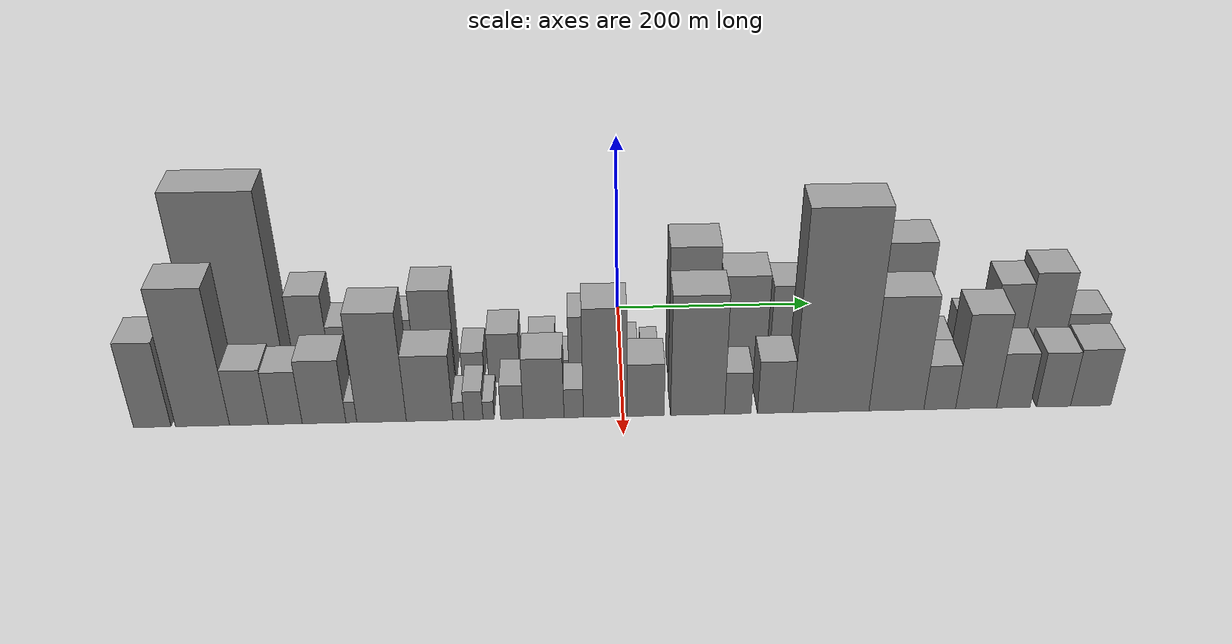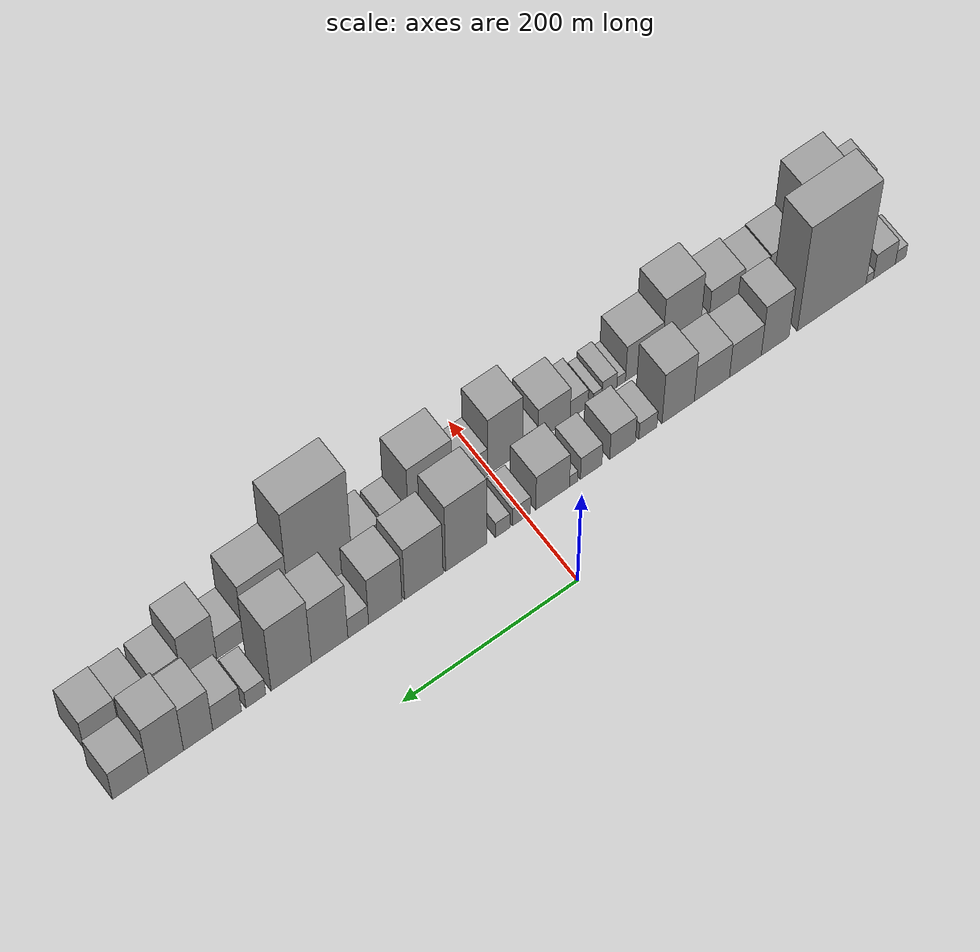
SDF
<sdf version="1.6">
 <world name="default">
  <scene>
   <sky><clouds><speed>12</speed></clouds></sky>
   <ambient>0.4 0.4 0.4 1</ambient>
   <background>0.7 0.7 0.7 1</background>
   <shadows>1</shadows>
  </scene>
  <gravity>0 0 -9.8066</gravity>
  <magnetic_field>6e-06 2.3e-05 -4.2e-05</magnetic_field>
  <physics default="0" name="default_physics" type="ode">
   <ode>
    <solver>
     <type>quick</type>
     <iters>10</iters>
     <sor>1.0</sor>
     <use_dynamic_moi_rescaling>0</use_dynamic_moi_rescaling>
    </solver>
    <constraints>
     <cfm>0</cfm>
     <erp>0.2</erp>
     <contact_max_correcting_vel>100</contact_max_correcting_vel>
     <contact_surface_layer>0.001</contact_surface_layer>
    </constraints>
   </ode>
   <max_step_size>0.004</max_step_size>
   <real_time_factor>1</real_time_factor>
   <real_time_update_rate>250</real_time_update_rate>
  </physics>
  <light name="sun" type="directional">
   <pose>0 0 10 0 0 0</pose>
   <diffuse>0.8 0.8 0.8 1</diffuse>
   <specular>0.2 0.2 0.2 1</specular>
   <attenuation>
    <range>1000</range>
    <constant>0.9</constant>
    <linear>0.01</linear>
    <quadratic>0.001</quadratic>
   </attenuation>
   <direction>-0.5 0.1 -0.9</direction>
  </light>
  <model name="building_1">
   <static>1</static>
   <pose>100.0000 -443.6787 0 0.000000 0.000000 0.000000</pose>
   <link name="link">
    <pose>0 0 13.50 0 0 0</pose>
    <collision name="collision"><geometry><box><size>40.0000 12.6426 27.0000</size></box></geometry></collision>
    <visual name="visual">
     <cast_shadows>0</cast_shadows>
     <geometry><box><size>40.0000 12.6426 27.0000</size></box></geometry>
     <material>
      <script>
       <uri>model://grey_wall/materials/scripts</uri>
       <uri>model://grey_wall/materials/textures</uri>
       <name>vrc/grey_wall</name>
      </script>
     </material>
    </visual>
   </link>
  </model>
  <model name="building_2">
   <static>1</static>
   <pose>100.0000 -424.0104 0 0.000000 0.000000 0.000000</pose>
   <link name="link">
    <pose>0 0 25.50 0 0 0</pose>
    <collision name="collision"><geometry><box><size>40.0000 26.6941 51.0000</size></box></geometry></collision>
    <visual name="visual">
     <cast_shadows>0</cast_shadows>
     <geometry><box><size>40.0000 26.6941 51.0000</size></box></geometry>
     <material>
      <script>
       <uri>model://grey_wall/materials/scripts</uri>
       <uri>model://grey_wall/materials/textures</uri>
       <name>vrc/grey_wall</name>
      </script>
     </material>
    </visual>
   </link>
  </model>
  <model name="building_3">
   <static>1</static>
   <pose>100.0000 -406.2277 0 0.000000 0.000000 0.000000</pose>
   <link name="link">
    <pose>0 0 9.00 0 0 0</pose>
    <collision name="collision"><geometry><box><size>40.0000 8.8712 18.0000</size></box></geometry></collision>
    <visual name="visual">
     <cast_shadows>0</cast_shadows>
     <geometry><box><size>40.0000 8.8712 18.0000</size></box></geometry>
     <material>
      <script>
       <uri>model://grey_wall/materials/scripts</uri>
       <uri>model://grey_wall/materials/textures</uri>
       <name>vrc/grey_wall</name>
      </script>
     </material>
    </visual>
   </link>
  </model>
  <model name="building_4">
   <static>1</static>
   <pose>100.0000 -360.5033 0 0.000000 0.000000 0.000000</pose>
   <link name="link">
    <pose>0 0 108.00 0 0 0</pose>
    <collision name="collision"><geometry><box><size>40.0000 82.5776 216.0000</size></box></geometry></collision>
    <visual name="visual">
     <cast_shadows>0</cast_shadows>
     <geometry><box><size>40.0000 82.5776 216.0000</size></box></geometry>
     <material>
      <script>
       <uri>model://grey_wall/materials/scripts</uri>
       <uri>model://grey_wall/materials/textures</uri>
       <name>vrc/grey_wall</name>
      </script>
     </material>
    </visual>
   </link>
  </model>
  <model name="building_5">
   <static>1</static>
   <pose>100.0000 -292.5312 0 0.000000 0.000000 0.000000</pose>
   <link name="link">
    <pose>0 0 52.50 0 0 0</pose>
    <collision name="collision"><geometry><box><size>40.0000 33.3666 105.0000</size></box></geometry></collision>
    <visual name="visual">
     <cast_shadows>0</cast_shadows>
     <geometry><box><size>40.0000 33.3666 105.0000</size></box></geometry>
     <material>
      <script>
       <uri>model://grey_wall/materials/scripts</uri>
       <uri>model://grey_wall/materials/textures</uri>
       <name>vrc/grey_wall</name>
      </script>
     </material>
    </visual>
   </link>
  </model>
  <model name="building_6">
   <static>1</static>
   <pose>100.0000 -256.9862 0 0.000000 0.000000 0.000000</pose>
   <link name="link">
    <pose>0 0 34.50 0 0 0</pose>
    <collision name="collision"><geometry><box><size>40.0000 37.7236 69.0000</size></box></geometry></collision>
    <visual name="visual">
     <cast_shadows>0</cast_shadows>
     <geometry><box><size>40.0000 37.7236 69.0000</size></box></geometry>
     <material>
      <script>
       <uri>model://grey_wall/materials/scripts</uri>
       <uri>model://grey_wall/materials/textures</uri>
       <name>vrc/grey_wall</name>
      </script>
     </material>
    </visual>
   </link>
  </model>
  <model name="building_7">
   <static>1</static>
   <pose>100.0000 -217.2485 0 0.000000 0.000000 0.000000</pose>
   <link name="link">
    <pose>0 0 37.50 0 0 0</pose>
    <collision name="collision"><geometry><box><size>40.0000 41.7519 75.0000</size></box></geometry></collision>
    <visual name="visual">
     <cast_shadows>0</cast_shadows>
     <geometry><box><size>40.0000 41.7519 75.0000</size></box></geometry>
     <material>
      <script>
       <uri>model://grey_wall/materials/scripts</uri>
       <uri>model://grey_wall/materials/textures</uri>
       <name>vrc/grey_wall</name>
      </script>
     </material>
    </visual>
   </link>
  </model>
  <model name="building_8">
   <static>1</static>
   <pose>100.0000 -177.3488 0 0.000000 0.000000 0.000000</pose>
   <link name="link">
    <pose>0 0 54.00 0 0 0</pose>
    <collision name="collision"><geometry><box><size>40.0000 38.0475 108.0000</size></box></geometry></collision>
    <visual name="visual">
     <cast_shadows>0</cast_shadows>
     <geometry><box><size>40.0000 38.0475 108.0000</size></box></geometry>
     <material>
      <script>
       <uri>model://grey_wall/materials/scripts</uri>
       <uri>model://grey_wall/materials/textures</uri>
       <name>vrc/grey_wall</name>
      </script>
     </material>
    </visual>
   </link>
  </model>
  <model name="building_9">
   <static>1</static>
   <pose>100.0000 -141.7301 0 0.000000 0.000000 0.000000</pose>
   <link name="link">
    <pose>0 0 18.00 0 0 0</pose>
    <collision name="collision"><geometry><box><size>40.0000 21.1898 36.0000</size></box></geometry></collision>
    <visual name="visual">
     <cast_shadows>0</cast_shadows>
     <geometry><box><size>40.0000 21.1898 36.0000</size></box></geometry>
     <material>
      <script>
       <uri>model://grey_wall/materials/scripts</uri>
       <uri>model://grey_wall/materials/textures</uri>
       <name>vrc/grey_wall</name>
      </script>
     </material>
    </visual>
   </link>
  </model>
  <model name="building_10">
   <static>1</static>
   <pose>100.0000 -112.0870 0 0.000000 0.000000 0.000000</pose>
   <link name="link">
    <pose>0 0 28.50 0 0 0</pose>
    <collision name="collision"><geometry><box><size>40.0000 30.0966 57.0000</size></box></geometry></collision>
    <visual name="visual">
     <cast_shadows>0</cast_shadows>
     <geometry><box><size>40.0000 30.0966 57.0000</size></box></geometry>
     <material>
      <script>
       <uri>model://grey_wall/materials/scripts</uri>
       <uri>model://grey_wall/materials/textures</uri>
       <name>vrc/grey_wall</name>
      </script>
     </material>
    </visual>
   </link>
  </model>
  <model name="building_11">
   <static>1</static>
   <pose>100.0000 -75.4032 0 0.000000 0.000000 0.000000</pose>
   <link name="link">
    <pose>0 0 24.00 0 0 0</pose>
    <collision name="collision"><geometry><box><size>40.0000 25.2710 48.0000</size></box></geometry></collision>
    <visual name="visual">
     <cast_shadows>0</cast_shadows>
     <geometry><box><size>40.0000 25.2710 48.0000</size></box></geometry>
     <material>
      <script>
       <uri>model://grey_wall/materials/scripts</uri>
       <uri>model://grey_wall/materials/textures</uri>
       <name>vrc/grey_wall</name>
      </script>
     </material>
    </visual>
   </link>
  </model>
  <model name="building_12">
   <static>1</static>
   <pose>100.0000 -54.9610 0 0.000000 0.000000 0.000000</pose>
   <link name="link">
    <pose>0 0 12.00 0 0 0</pose>
    <collision name="collision"><geometry><box><size>40.0000 9.6134 24.0000</size></box></geometry></collision>
    <visual name="visual">
     <cast_shadows>0</cast_shadows>
     <geometry><box><size>40.0000 9.6134 24.0000</size></box></geometry>
     <material>
      <script>
       <uri>model://grey_wall/materials/scripts</uri>
       <uri>model://grey_wall/materials/textures</uri>
       <name>vrc/grey_wall</name>
      </script>
     </material>
    </visual>
   </link>
  </model>
  <model name="building_13">
   <static>1</static>
   <pose>100.0000 -30.5853 0 0.000000 0.000000 0.000000</pose>
   <link name="link">
    <pose>0 0 37.50 0 0 0</pose>
    <collision name="collision"><geometry><box><size>40.0000 39.1379 75.0000</size></box></geometry></collision>
    <visual name="visual">
     <cast_shadows>0</cast_shadows>
     <geometry><box><size>40.0000 39.1379 75.0000</size></box></geometry>
     <material>
      <script>
       <uri>model://grey_wall/materials/scripts</uri>
       <uri>model://grey_wall/materials/textures</uri>
       <name>vrc/grey_wall</name>
      </script>
     </material>
    </visual>
   </link>
  </model>
  <model name="building_14">
   <static>1</static>
   <pose>100.0000 5.3981 0 0.000000 0.000000 0.000000</pose>
   <link name="link">
    <pose>0 0 19.50 0 0 0</pose>
    <collision name="collision"><geometry><box><size>40.0000 20.8290 39.0000</size></box></geometry></collision>
    <visual name="visual">
     <cast_shadows>0</cast_shadows>
     <geometry><box><size>40.0000 20.8290 39.0000</size></box></geometry>
     <material>
      <script>
       <uri>model://grey_wall/materials/scripts</uri>
       <uri>model://grey_wall/materials/textures</uri>
       <name>vrc/grey_wall</name>
      </script>
     </material>
    </visual>
   </link>
  </model>
  <model name="building_15">
   <static>1</static>
   <pose>100.0000 27.1284 0 0.000000 0.000000 0.000000</pose>
   <link name="link">
    <pose>0 0 16.50 0 0 0</pose>
    <collision name="collision"><geometry><box><size>40.0000 16.6317 33.0000</size></box></geometry></collision>
    <visual name="visual">
     <cast_shadows>0</cast_shadows>
     <geometry><box><size>40.0000 16.6317 33.0000</size></box></geometry>
     <material>
      <script>
       <uri>model://grey_wall/materials/scripts</uri>
       <uri>model://grey_wall/materials/textures</uri>
       <name>vrc/grey_wall</name>
      </script>
     </material>
    </visual>
   </link>
  </model>
  <model name="building_16">
   <static>1</static>
   <pose>100.0000 69.0019 0 0.000000 0.000000 0.000000</pose>
   <link name="link">
    <pose>0 0 75.00 0 0 0</pose>
    <collision name="collision"><geometry><box><size>40.0000 47.1153 150.0000</size></box></geometry></collision>
    <visual name="visual">
     <cast_shadows>0</cast_shadows>
     <geometry><box><size>40.0000 47.1153 150.0000</size></box></geometry>
     <material>
      <script>
       <uri>model://grey_wall/materials/scripts</uri>
       <uri>model://grey_wall/materials/textures</uri>
       <name>vrc/grey_wall</name>
      </script>
     </material>
    </visual>
   </link>
  </model>
  <model name="building_17">
   <static>1</static>
   <pose>100.0000 117.4692 0 0.000000 0.000000 0.000000</pose>
   <link name="link">
    <pose>0 0 58.50 0 0 0</pose>
    <collision name="collision"><geometry><box><size>40.0000 43.8192 117.0000</size></box></geometry></collision>
    <visual name="visual">
     <cast_shadows>0</cast_shadows>
     <geometry><box><size>40.0000 43.8192 117.0000</size></box></geometry>
     <material>
      <script>
       <uri>model://grey_wall/materials/scripts</uri>
       <uri>model://grey_wall/materials/textures</uri>
       <name>vrc/grey_wall</name>
      </script>
     </material>
    </visual>
   </link>
  </model>
  <model name="building_18">
   <static>1</static>
   <pose>100.0000 161.2501 0 0.000000 0.000000 0.000000</pose>
   <link name="link">
    <pose>0 0 52.50 0 0 0</pose>
    <collision name="collision"><geometry><box><size>40.0000 37.7426 105.0000</size></box></geometry></collision>
    <visual name="visual">
     <cast_shadows>0</cast_shadows>
     <geometry><box><size>40.0000 37.7426 105.0000</size></box></geometry>
     <material>
      <script>
       <uri>model://grey_wall/materials/scripts</uri>
       <uri>model://grey_wall/materials/textures</uri>
       <name>vrc/grey_wall</name>
      </script>
     </material>
    </visual>
   </link>
  </model>
  <model name="building_19">
   <static>1</static>
   <pose>100.0000 191.7810 0 0.000000 0.000000 0.000000</pose>
   <link name="link">
    <pose>0 0 22.50 0 0 0</pose>
    <collision name="collision"><geometry><box><size>40.0000 23.3192 45.0000</size></box></geometry></collision>
    <visual name="visual">
     <cast_shadows>0</cast_shadows>
     <geometry><box><size>40.0000 23.3192 45.0000</size></box></geometry>
     <material>
      <script>
       <uri>model://grey_wall/materials/scripts</uri>
       <uri>model://grey_wall/materials/textures</uri>
       <name>vrc/grey_wall</name>
      </script>
     </material>
    </visual>
   </link>
  </model>
  <model name="building_20">
   <static>1</static>
   <pose>100.0000 224.0003 0 0.000000 0.000000 0.000000</pose>
   <link name="link">
    <pose>0 0 64.50 0 0 0</pose>
    <collision name="collision"><geometry><box><size>40.0000 41.1194 129.0000</size></box></geometry></collision>
    <visual name="visual">
     <cast_shadows>0</cast_shadows>
     <geometry><box><size>40.0000 41.1194 129.0000</size></box></geometry>
     <material>
      <script>
       <uri>model://grey_wall/materials/scripts</uri>
       <uri>model://grey_wall/materials/textures</uri>
       <name>vrc/grey_wall</name>
      </script>
     </material>
    </visual>
   </link>
  </model>
  <model name="building_21">
   <static>1</static>
   <pose>100.0000 267.1713 0 0.000000 0.000000 0.000000</pose>
   <link name="link">
    <pose>0 0 75.00 0 0 0</pose>
    <collision name="collision"><geometry><box><size>40.0000 45.2226 150.0000</size></box></geometry></collision>
    <visual name="visual">
     <cast_shadows>0</cast_shadows>
     <geometry><box><size>40.0000 45.2226 150.0000</size></box></geometry>
     <material>
      <script>
       <uri>model://grey_wall/materials/scripts</uri>
       <uri>model://grey_wall/materials/textures</uri>
       <name>vrc/grey_wall</name>
      </script>
     </material>
    </visual>
   </link>
  </model>
  <model name="building_22">
   <static>1</static>
   <pose>100.0000 306.7946 0 0.000000 0.000000 0.000000</pose>
   <link name="link">
    <pose>0 0 19.50 0 0 0</pose>
    <collision name="collision"><geometry><box><size>40.0000 22.0240 39.0000</size></box></geometry></collision>
    <visual name="visual">
     <cast_shadows>0</cast_shadows>
     <geometry><box><size>40.0000 22.0240 39.0000</size></box></geometry>
     <material>
      <script>
       <uri>model://grey_wall/materials/scripts</uri>
       <uri>model://grey_wall/materials/textures</uri>
       <name>vrc/grey_wall</name>
      </script>
     </material>
    </visual>
   </link>
  </model>
  <model name="building_23">
   <static>1</static>
   <pose>100.0000 338.6881 0 0.000000 0.000000 0.000000</pose>
   <link name="link">
    <pose>0 0 30.00 0 0 0</pose>
    <collision name="collision"><geometry><box><size>40.0000 31.7629 60.0000</size></box></geometry></collision>
    <visual name="visual">
     <cast_shadows>0</cast_shadows>
     <geometry><box><size>40.0000 31.7629 60.0000</size></box></geometry>
     <material>
      <script>
       <uri>model://grey_wall/materials/scripts</uri>
       <uri>model://grey_wall/materials/textures</uri>
       <name>vrc/grey_wall</name>
      </script>
     </material>
    </visual>
   </link>
  </model>
  <model name="building_24">
   <static>1</static>
   <pose>100.0000 370.7514 0 0.000000 0.000000 0.000000</pose>
   <link name="link">
    <pose>0 0 51.00 0 0 0</pose>
    <collision name="collision"><geometry><box><size>40.0000 32.3636 102.0000</size></box></geometry></collision>
    <visual name="visual">
     <cast_shadows>0</cast_shadows>
     <geometry><box><size>40.0000 32.3636 102.0000</size></box></geometry>
     <material>
      <script>
       <uri>model://grey_wall/materials/scripts</uri>
       <uri>model://grey_wall/materials/textures</uri>
       <name>vrc/grey_wall</name>
      </script>
     </material>
    </visual>
   </link>
  </model>
  <model name="building_25">
   <static>1</static>
   <pose>100.0000 406.3251 0 0.000000 0.000000 0.000000</pose>
   <link name="link">
    <pose>0 0 57.00 0 0 0</pose>
    <collision name="collision"><geometry><box><size>40.0000 38.7839 114.0000</size></box></geometry></collision>
    <visual name="visual">
     <cast_shadows>0</cast_shadows>
     <geometry><box><size>40.0000 38.7839 114.0000</size></box></geometry>
     <material>
      <script>
       <uri>model://grey_wall/materials/scripts</uri>
       <uri>model://grey_wall/materials/textures</uri>
       <name>vrc/grey_wall</name>
      </script>
     </material>
    </visual>
   </link>
  </model>
  <model name="building_26">
   <static>1</static>
   <pose>100.0000 445.4560 0 0.000000 0.000000 0.000000</pose>
   <link name="link">
    <pose>0 0 33.00 0 0 0</pose>
    <collision name="collision"><geometry><box><size>40.0000 39.4779 66.0000</size></box></geometry></collision>
    <visual name="visual">
     <cast_shadows>0</cast_shadows>
     <geometry><box><size>40.0000 39.4779 66.0000</size></box></geometry>
     <material>
      <script>
       <uri>model://grey_wall/materials/scripts</uri>
       <uri>model://grey_wall/materials/textures</uri>
       <name>vrc/grey_wall</name>
      </script>
     </material>
    </visual>
   </link>
  </model>
  <model name="building_27">
   <static>1</static>
   <pose>155.0000 -432.9092 0 0.000000 0.000000 0.000000</pose>
   <link name="link">
    <pose>0 0 48.00 0 0 0</pose>
    <collision name="collision"><geometry><box><size>40.0000 34.1816 96.0000</size></box></geometry></collision>
    <visual name="visual">
     <cast_shadows>0</cast_shadows>
     <geometry><box><size>40.0000 34.1816 96.0000</size></box></geometry>
     <material>
      <script>
       <uri>model://grey_wall/materials/scripts</uri>
       <uri>model://grey_wall/materials/textures</uri>
       <name>vrc/grey_wall</name>
      </script>
     </material>
    </visual>
   </link>
  </model>
  <model name="building_28">
   <static>1</static>
   <pose>155.0000 -387.0887 0 0.000000 0.000000 0.000000</pose>
   <link name="link">
    <pose>0 0 76.50 0 0 0</pose>
    <collision name="collision"><geometry><box><size>40.0000 49.4595 153.0000</size></box></geometry></collision>
    <visual name="visual">
     <cast_shadows>0</cast_shadows>
     <geometry><box><size>40.0000 49.4595 153.0000</size></box></geometry>
     <material>
      <script>
       <uri>model://grey_wall/materials/scripts</uri>
       <uri>model://grey_wall/materials/textures</uri>
       <name>vrc/grey_wall</name>
      </script>
     </material>
    </visual>
   </link>
  </model>
  <model name="building_29">
   <static>1</static>
   <pose>155.0000 -344.6442 0 0.000000 0.000000 0.000000</pose>
   <link name="link">
    <pose>0 0 31.50 0 0 0</pose>
    <collision name="collision"><geometry><box><size>40.0000 35.4294 63.0000</size></box></geometry></collision>
    <visual name="visual">
     <cast_shadows>0</cast_shadows>
     <geometry><box><size>40.0000 35.4294 63.0000</size></box></geometry>
     <material>
      <script>
       <uri>model://grey_wall/materials/scripts</uri>
       <uri>model://grey_wall/materials/textures</uri>
       <name>vrc/grey_wall</name>
      </script>
     </material>
    </visual>
   </link>
  </model>
  <model name="building_30">
   <static>1</static>
   <pose>155.0000 -311.4064 0 0.000000 0.000000 0.000000</pose>
   <link name="link">
    <pose>0 0 30.00 0 0 0</pose>
    <collision name="collision"><geometry><box><size>40.0000 31.0463 60.0000</size></box></geometry></collision>
    <visual name="visual">
     <cast_shadows>0</cast_shadows>
     <geometry><box><size>40.0000 31.0463 60.0000</size></box></geometry>
     <material>
      <script>
       <uri>model://grey_wall/materials/scripts</uri>
       <uri>model://grey_wall/materials/textures</uri>
       <name>vrc/grey_wall</name>
      </script>
     </material>
    </visual>
   </link>
  </model>
  <model name="building_31">
   <static>1</static>
   <pose>155.0000 -275.8571 0 0.000000 0.000000 0.000000</pose>
   <link name="link">
    <pose>0 0 36.00 0 0 0</pose>
    <collision name="collision"><geometry><box><size>40.0000 40.0524 72.0000</size></box></geometry></collision>
    <visual name="visual">
     <cast_shadows>0</cast_shadows>
     <geometry><box><size>40.0000 40.0524 72.0000</size></box></geometry>
     <material>
      <script>
       <uri>model://grey_wall/materials/scripts</uri>
       <uri>model://grey_wall/materials/textures</uri>
       <name>vrc/grey_wall</name>
      </script>
     </material>
    </visual>
   </link>
  </model>
  <model name="building_32">
   <static>1</static>
   <pose>155.0000 -250.8228 0 0.000000 0.000000 0.000000</pose>
   <link name="link">
    <pose>0 0 12.00 0 0 0</pose>
    <collision name="collision"><geometry><box><size>40.0000 10.0162 24.0000</size></box></geometry></collision>
    <visual name="visual">
     <cast_shadows>0</cast_shadows>
     <geometry><box><size>40.0000 10.0162 24.0000</size></box></geometry>
     <material>
      <script>
       <uri>model://grey_wall/materials/scripts</uri>
       <uri>model://grey_wall/materials/textures</uri>
       <name>vrc/grey_wall</name>
      </script>
     </material>
    </visual>
   </link>
  </model>
  <model name="building_33">
   <static>1</static>
   <pose>155.0000 -223.0490 0 0.000000 0.000000 0.000000</pose>
   <link name="link">
    <pose>0 0 61.50 0 0 0</pose>
    <collision name="collision"><geometry><box><size>40.0000 45.5314 123.0000</size></box></geometry></collision>
    <visual name="visual">
     <cast_shadows>0</cast_shadows>
     <geometry><box><size>40.0000 45.5314 123.0000</size></box></geometry>
     <material>
      <script>
       <uri>model://grey_wall/materials/scripts</uri>
       <uri>model://grey_wall/materials/textures</uri>
       <name>vrc/grey_wall</name>
      </script>
     </material>
    </visual>
   </link>
  </model>
  <model name="building_34">
   <static>1</static>
   <pose>155.0000 -178.7555 0 0.000000 0.000000 0.000000</pose>
   <link name="link">
    <pose>0 0 37.50 0 0 0</pose>
    <collision name="collision"><geometry><box><size>40.0000 43.0557 75.0000</size></box></geometry></collision>
    <visual name="visual">
     <cast_shadows>0</cast_shadows>
     <geometry><box><size>40.0000 43.0557 75.0000</size></box></geometry>
     <material>
      <script>
       <uri>model://grey_wall/materials/scripts</uri>
       <uri>model://grey_wall/materials/textures</uri>
       <name>vrc/grey_wall</name>
      </script>
     </material>
    </visual>
   </link>
  </model>
  <model name="building_35">
   <static>1</static>
   <pose>155.0000 -152.1327 0 0.000000 0.000000 0.000000</pose>
   <link name="link">
    <pose>0 0 10.50 0 0 0</pose>
    <collision name="collision"><geometry><box><size>40.0000 10.1898 21.0000</size></box></geometry></collision>
    <visual name="visual">
     <cast_shadows>0</cast_shadows>
     <geometry><box><size>40.0000 10.1898 21.0000</size></box></geometry>
     <material>
      <script>
       <uri>model://grey_wall/materials/scripts</uri>
       <uri>model://grey_wall/materials/textures</uri>
       <name>vrc/grey_wall</name>
      </script>
     </material>
    </visual>
   </link>
  </model>
  <model name="building_36">
   <static>1</static>
   <pose>155.0000 -138.2893 0 0.000000 0.000000 0.000000</pose>
   <link name="link">
    <pose>0 0 16.50 0 0 0</pose>
    <collision name="collision"><geometry><box><size>40.0000 17.4970 33.0000</size></box></geometry></collision>
    <visual name="visual">
     <cast_shadows>0</cast_shadows>
     <geometry><box><size>40.0000 17.4970 33.0000</size></box></geometry>
     <material>
      <script>
       <uri>model://grey_wall/materials/scripts</uri>
       <uri>model://grey_wall/materials/textures</uri>
       <name>vrc/grey_wall</name>
      </script>
     </material>
    </visual>
   </link>
  </model>
  <model name="building_37">
   <static>1</static>
   <pose>155.0000 -124.4014 0 0.000000 0.000000 0.000000</pose>
   <link name="link">
    <pose>0 0 10.50 0 0 0</pose>
    <collision name="collision"><geometry><box><size>40.0000 10.2790 21.0000</size></box></geometry></collision>
    <visual name="visual">
     <cast_shadows>0</cast_shadows>
     <geometry><box><size>40.0000 10.2790 21.0000</size></box></geometry>
     <material>
      <script>
       <uri>model://grey_wall/materials/scripts</uri>
       <uri>model://grey_wall/materials/textures</uri>
       <name>vrc/grey_wall</name>
      </script>
     </material>
    </visual>
   </link>
  </model>
  <model name="building_38">
   <static>1</static>
   <pose>155.0000 -102.7857 0 0.000000 0.000000 0.000000</pose>
   <link name="link">
    <pose>0 0 19.50 0 0 0</pose>
    <collision name="collision"><geometry><box><size>40.0000 20.9523 39.0000</size></box></geometry></collision>
    <visual name="visual">
     <cast_shadows>0</cast_shadows>
     <geometry><box><size>40.0000 20.9523 39.0000</size></box></geometry>
     <material>
      <script>
       <uri>model://grey_wall/materials/scripts</uri>
       <uri>model://grey_wall/materials/textures</uri>
       <name>vrc/grey_wall</name>
      </script>
     </material>
    </visual>
   </link>
  </model>
  <model name="building_39">
   <static>1</static>
   <pose>155.0000 -73.4619 0 0.000000 0.000000 0.000000</pose>
   <link name="link">
    <pose>0 0 34.50 0 0 0</pose>
    <collision name="collision"><geometry><box><size>40.0000 37.6953 69.0000</size></box></geometry></collision>
    <visual name="visual">
     <cast_shadows>0</cast_shadows>
     <geometry><box><size>40.0000 37.6953 69.0000</size></box></geometry>
     <material>
      <script>
       <uri>model://grey_wall/materials/scripts</uri>
       <uri>model://grey_wall/materials/textures</uri>
       <name>vrc/grey_wall</name>
      </script>
     </material>
    </visual>
   </link>
  </model>
  <model name="building_40">
   <static>1</static>
   <pose>155.0000 -45.6247 0 0.000000 0.000000 0.000000</pose>
   <link name="link">
    <pose>0 0 16.50 0 0 0</pose>
    <collision name="collision"><geometry><box><size>40.0000 17.9792 33.0000</size></box></geometry></collision>
    <visual name="visual">
     <cast_shadows>0</cast_shadows>
     <geometry><box><size>40.0000 17.9792 33.0000</size></box></geometry>
     <material>
      <script>
       <uri>model://grey_wall/materials/scripts</uri>
       <uri>model://grey_wall/materials/textures</uri>
       <name>vrc/grey_wall</name>
      </script>
     </material>
    </visual>
   </link>
  </model>
  <model name="building_41">
   <static>1</static>
   <pose>155.0000 -16.4580 0 0.000000 0.000000 0.000000</pose>
   <link name="link">
    <pose>0 0 61.50 0 0 0</pose>
    <collision name="collision"><geometry><box><size>40.0000 40.3541 123.0000</size></box></geometry></collision>
    <visual name="visual">
     <cast_shadows>0</cast_shadows>
     <geometry><box><size>40.0000 40.3541 123.0000</size></box></geometry>
     <material>
      <script>
       <uri>model://grey_wall/materials/scripts</uri>
       <uri>model://grey_wall/materials/textures</uri>
       <name>vrc/grey_wall</name>
      </script>
     </material>
    </visual>
   </link>
  </model>
  <model name="building_42">
   <static>1</static>
   <pose>155.0000 21.0557 0 0.000000 0.000000 0.000000</pose>
   <link name="link">
    <pose>0 0 30.00 0 0 0</pose>
    <collision name="collision"><geometry><box><size>40.0000 34.6733 60.0000</size></box></geometry></collision>
    <visual name="visual">
     <cast_shadows>0</cast_shadows>
     <geometry><box><size>40.0000 34.6733 60.0000</size></box></geometry>
     <material>
      <script>
       <uri>model://grey_wall/materials/scripts</uri>
       <uri>model://grey_wall/materials/textures</uri>
       <name>vrc/grey_wall</name>
      </script>
     </material>
    </visual>
   </link>
  </model>
  <model name="building_43">
   <static>1</static>
   <pose>155.0000 69.5614 0 0.000000 0.000000 0.000000</pose>
   <link name="link">
    <pose>0 0 67.50 0 0 0</pose>
    <collision name="collision"><geometry><box><size>40.0000 50.3380 135.0000</size></box></geometry></collision>
    <visual name="visual">
     <cast_shadows>0</cast_shadows>
     <geometry><box><size>40.0000 50.3380 135.0000</size></box></geometry>
     <material>
      <script>
       <uri>model://grey_wall/materials/scripts</uri>
       <uri>model://grey_wall/materials/textures</uri>
       <name>vrc/grey_wall</name>
      </script>
     </material>
    </visual>
   </link>
  </model>
  <model name="building_44">
   <static>1</static>
   <pose>155.0000 107.0837 0 0.000000 0.000000 0.000000</pose>
   <link name="link">
    <pose>0 0 24.00 0 0 0</pose>
    <collision name="collision"><geometry><box><size>40.0000 24.7066 48.0000</size></box></geometry></collision>
    <visual name="visual">
     <cast_shadows>0</cast_shadows>
     <geometry><box><size>40.0000 24.7066 48.0000</size></box></geometry>
     <material>
      <script>
       <uri>model://grey_wall/materials/scripts</uri>
       <uri>model://grey_wall/materials/textures</uri>
       <name>vrc/grey_wall</name>
      </script>
     </material>
    </visual>
   </link>
  </model>
  <model name="building_45">
   <static>1</static>
   <pose>155.0000 142.0671 0 0.000000 0.000000 0.000000</pose>
   <link name="link">
    <pose>0 0 30.00 0 0 0</pose>
    <collision name="collision"><geometry><box><size>40.0000 33.2604 60.0000</size></box></geometry></collision>
    <visual name="visual">
     <cast_shadows>0</cast_shadows>
     <geometry><box><size>40.0000 33.2604 60.0000</size></box></geometry>
     <material>
      <script>
       <uri>model://grey_wall/materials/scripts</uri>
       <uri>model://grey_wall/materials/textures</uri>
       <name>vrc/grey_wall</name>
      </script>
     </material>
    </visual>
   </link>
  </model>
  <model name="building_46">
   <static>1</static>
   <pose>155.0000 194.3819 0 0.000000 0.000000 0.000000</pose>
   <link name="link">
    <pose>0 0 111.00 0 0 0</pose>
    <collision name="collision"><geometry><box><size>40.0000 71.3692 222.0000</size></box></geometry></collision>
    <visual name="visual">
     <cast_shadows>0</cast_shadows>
     <geometry><box><size>40.0000 71.3692 222.0000</size></box></geometry>
     <material>
      <script>
       <uri>model://grey_wall/materials/scripts</uri>
       <uri>model://grey_wall/materials/textures</uri>
       <name>vrc/grey_wall</name>
      </script>
     </material>
    </visual>
   </link>
  </model>
  <model name="building_47">
   <static>1</static>
   <pose>155.0000 255.8592 0 0.000000 0.000000 0.000000</pose>
   <link name="link">
    <pose>0 0 64.50 0 0 0</pose>
    <collision name="collision"><geometry><box><size>40.0000 51.5853 129.0000</size></box></geometry></collision>
    <visual name="visual">
     <cast_shadows>0</cast_shadows>
     <geometry><box><size>40.0000 51.5853 129.0000</size></box></geometry>
     <material>
      <script>
       <uri>model://grey_wall/materials/scripts</uri>
       <uri>model://grey_wall/materials/textures</uri>
       <name>vrc/grey_wall</name>
      </script>
     </material>
    </visual>
   </link>
  </model>
  <model name="building_48">
   <static>1</static>
   <pose>155.0000 296.6281 0 0.000000 0.000000 0.000000</pose>
   <link name="link">
    <pose>0 0 25.50 0 0 0</pose>
    <collision name="collision"><geometry><box><size>40.0000 29.9524 51.0000</size></box></geometry></collision>
    <visual name="visual">
     <cast_shadows>0</cast_shadows>
     <geometry><box><size>40.0000 29.9524 51.0000</size></box></geometry>
     <material>
      <script>
       <uri>model://grey_wall/materials/scripts</uri>
       <uri>model://grey_wall/materials/textures</uri>
       <name>vrc/grey_wall</name>
      </script>
     </material>
    </visual>
   </link>
  </model>
  <model name="building_49">
   <static>1</static>
   <pose>155.0000 330.9182 0 0.000000 0.000000 0.000000</pose>
   <link name="link">
    <pose>0 0 54.00 0 0 0</pose>
    <collision name="collision"><geometry><box><size>40.0000 38.6278 108.0000</size></box></geometry></collision>
    <visual name="visual">
     <cast_shadows>0</cast_shadows>
     <geometry><box><size>40.0000 38.6278 108.0000</size></box></geometry>
     <material>
      <script>
       <uri>model://grey_wall/materials/scripts</uri>
       <uri>model://grey_wall/materials/textures</uri>
       <name>vrc/grey_wall</name>
      </script>
     </material>
    </visual>
   </link>
  </model>
  <model name="building_50">
   <static>1</static>
   <pose>155.0000 366.1477 0 0.000000 0.000000 0.000000</pose>
   <link name="link">
    <pose>0 0 31.50 0 0 0</pose>
    <collision name="collision"><geometry><box><size>40.0000 31.8311 63.0000</size></box></geometry></collision>
    <visual name="visual">
     <cast_shadows>0</cast_shadows>
     <geometry><box><size>40.0000 31.8311 63.0000</size></box></geometry>
     <material>
      <script>
       <uri>model://grey_wall/materials/scripts</uri>
       <uri>model://grey_wall/materials/textures</uri>
       <name>vrc/grey_wall</name>
      </script>
     </material>
    </visual>
   </link>
  </model>
  <model name="building_51">
   <static>1</static>
   <pose>155.0000 404.2242 0 0.000000 0.000000 0.000000</pose>
   <link name="link">
    <pose>0 0 31.50 0 0 0</pose>
    <collision name="collision"><geometry><box><size>40.0000 32.3221 63.0000</size></box></geometry></collision>
    <visual name="visual">
     <cast_shadows>0</cast_shadows>
     <geometry><box><size>40.0000 32.3221 63.0000</size></box></geometry>
     <material>
      <script>
       <uri>model://grey_wall/materials/scripts</uri>
       <uri>model://grey_wall/materials/textures</uri>
       <name>vrc/grey_wall</name>
      </script>
     </material>
    </visual>
   </link>
  </model>
  <model name="building_52">
   <static>1</static>
   <pose>155.0000 439.4539 0 0.000000 0.000000 0.000000</pose>
   <link name="link">
    <pose>0 0 33.00 0 0 0</pose>
    <collision name="collision"><geometry><box><size>40.0000 38.1373 66.0000</size></box></geometry></collision>
    <visual name="visual">
     <cast_shadows>0</cast_shadows>
     <geometry><box><size>40.0000 38.1373 66.0000</size></box></geometry>
     <material>
      <script>
       <uri>model://grey_wall/materials/scripts</uri>
       <uri>model://grey_wall/materials/textures</uri>
       <name>vrc/grey_wall</name>
      </script>
     </material>
    </visual>
   </link>
  </model>
 </world>
</sdf>
